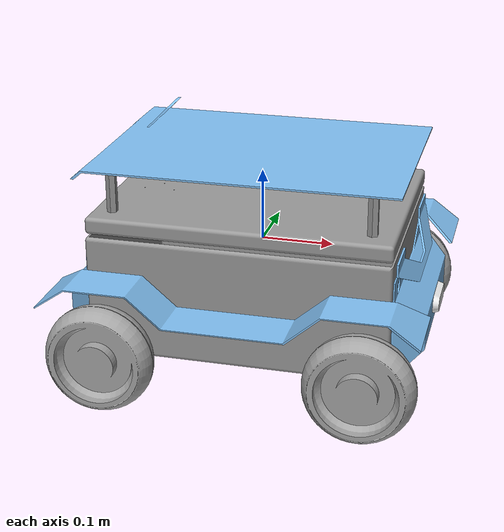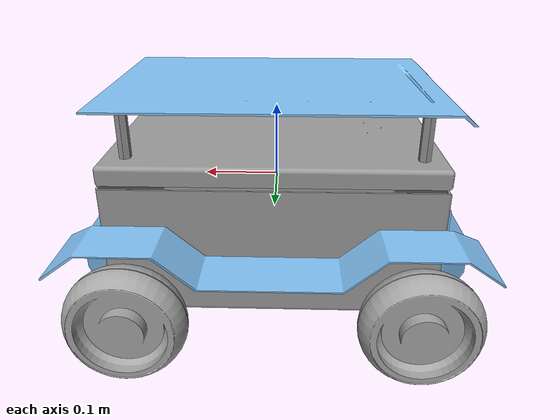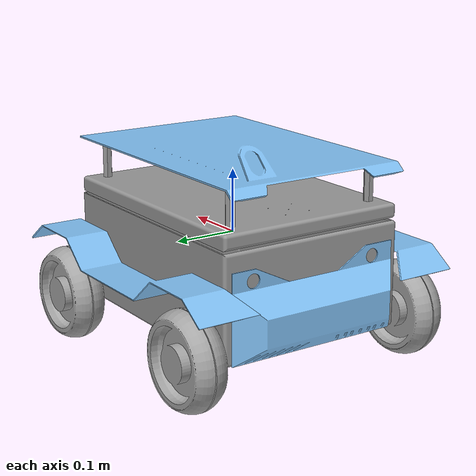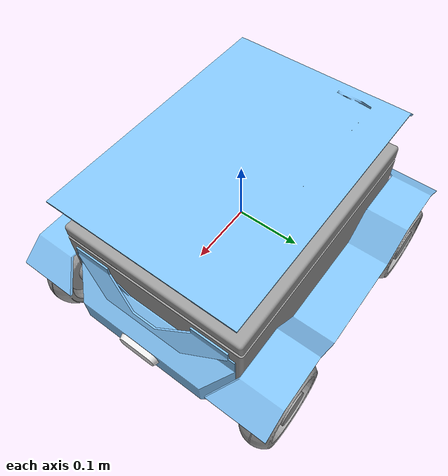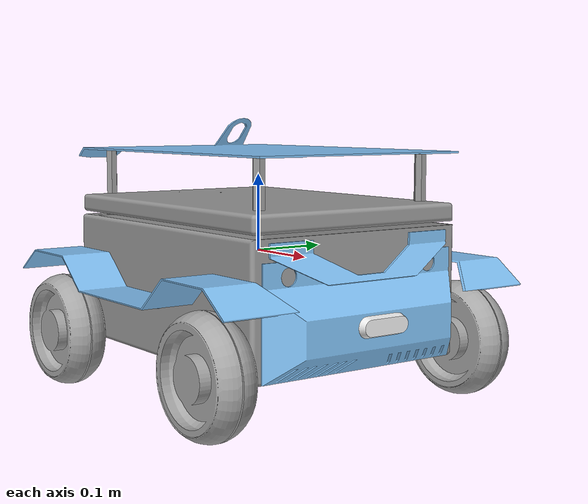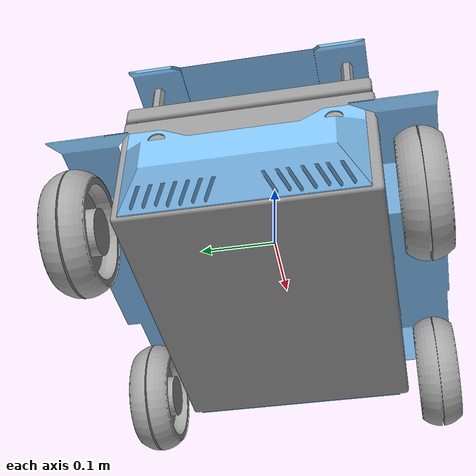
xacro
<robot name="solverBot_body" xmlns:xacro="http://www.ros.org/wiki/xacro">

  <!-- constants mio -->

  <xacro:property name="pi_const" value="3.14159265"/>

  <!-- Body dimensions -->

  <xacro:property name="body_link_x_dim" value="0.429"/>
  <xacro:property name="body_link_y_dim" value="0.335"/>
  <xacro:property name="body_link_z_dim" value="0.346"/>
  <xacro:property name="body_volume" value="${body_link_x_dim * body_link_y_dim * body_link_z_dim}"/>

  <!-- wheel dimensions -->

  <xacro:property name="wheel_link_radius" value="0.0755"/>
  <xacro:property name="wheel_link_length" value="0.055"/>
  <xacro:property name="wheel_link_z_location" value="-0.110"/>
  <xacro:property name="wheel_link_radius_sq" value="${wheel_link_radius * wheel_link_radius}"/>

  <xacro:property name="wheel_volume" value="${pi_const * wheel_link_radius_sq * wheel_link_length }"/>
  <xacro:property name="wheel_mesh" value="package://solver_description/meshes/wheelv3.dae"/>

  <!-- material density -->

  <xacro:property name="body_density" value="131.20"/>
  <xacro:property name="wheel_density" value="837.23"/>

  <!-- robot body and wheel mass -->

  <xacro:property name="body_mass" value="${body_density * body_volume}"/>
  <xacro:property name="wheel_mass" value="${wheel_density * wheel_volume}"/>

  <!-- moments of inertia of the wheel -->

  <xacro:property name="Iz_wheel" value="${0.5 * wheel_mass * wheel_link_radius_sq}"/>
  <xacro:property name="I_wheel" value="-${(1.0/12.0) * wheel_mass * (3.0 * wheel_link_radius_sq + wheel_link_length * wheel_link_length)}"/>

  <!-- This macro defines the complete inertial section of the wheel -->

  <xacro:macro name="inertia_wheel">
      <inertial>
          <origin rpy="0 0 0" xyz="0 0 0"/>
          <mass value="${wheel_mass}"/>
          <inertia ixx="0.0013393845833333333" ixy="0.0" ixz="0.0" iyy="0.0013393845833333333" iyz="0.0" izz="0.0023371024999999995"/>
      </inertial>

  </xacro:macro>

  <!-- over here we include the file that defines extra Gazebo options and motion control driver -->
  <xacro:include filename="robot.gazebo"/>

  <!-- from here link and joints definitions -->

  <!-- define this dummy or Gazebo will complain -->
  <link name="dummy">
  </link>

  <joint name="dummy_joint" type="fixed" >
      <parent link="dummy"/>
      <child  link="body_link" />
  </joint>

  <!-- from here body link and joints definitions -->

  <!-- This is the body of the robot -->
  <link name="body_link">
        <visual>
            <geometry>
                <mesh filename="package://solver_description/meshes/baseCaja.dae" />
            </geometry>
            <origin rpy="0 0 -1.5708" xyz="0 0 0"/>
        </visual>
        <visual>
            <geometry>
                <mesh filename="package://solver_description/meshes/tapacaja.stl" />
            </geometry>
            <origin rpy="0 0 -1.5708" xyz="0 0 0"/>

        </visual>
        <visual>
            <geometry>
                <mesh filename="package://solver_description/meshes/screw_hex.dae" />
            </geometry>
            <origin rpy="0 0 -1.5708" xyz="0 0 0"/>

        </visual>
      <collision>
          <geometry>
              <box size="${body_link_x_dim} ${body_link_y_dim} ${body_link_z_dim}" />
          </geometry>
          <origin rpy="0 0 0" xyz="0 0 0"/>
      </collision>
      <inertial>
          <origin rpy="0 0 0" xyz="0 0 0"/>
          <mass value="${body_mass}"/>
          <inertia
          ixx="${(1/12) * body_mass * (body_link_y_dim * body_link_y_dim + body_link_z_dim*body_link_z_dim)}"
          iyy="${(1/12) * body_mass * (body_link_x_dim * body_link_x_dim + body_link_z_dim*body_link_z_dim)}"
          izz="${(1/12) * body_mass * (body_link_y_dim * body_link_x_dim + body_link_z_dim*body_link_x_dim)}"
          ixy="0" ixz="0" iyz="0" />
      </inertial>
      <!-- close body link -->
  </link>

  <link name="aileron">
    <visual>
        <geometry>
            <mesh filename="package://solver_description/meshes/aleron_frontal.dae" />
        </geometry>
        <origin rpy="0 0 -1.5708" xyz="0 0 0"/>
    </visual>
    <visual>
        <geometry>
            <mesh filename="package://solver_description/meshes/Fender_R.dae" />
        </geometry>
        <origin rpy="0 0 -1.5708" xyz="0 0 0"/>
    </visual>
    <visual>
        <geometry>
            <mesh filename="package://solver_description/meshes/Fender_L.dae" />
        </geometry>
        <origin rpy="0 0 -1.5708" xyz="0 0 0"/>
    </visual>
    <visual>
        <geometry>
            <mesh filename="package://solver_description/meshes/cover.dae" />
        </geometry>
        <origin rpy="0 0 -1.5708" xyz="0 0 0"/>
    </visual>
    <visual>
        <geometry>
            <mesh filename="package://solver_description/meshes/bumpers.dae" />
        </geometry>
        <origin rpy="0 0 1.5708" xyz="0 0 0"/>
    </visual>
  <collision>
      <geometry>
          <box size="${body_link_x_dim} ${body_link_y_dim} ${body_link_z_dim}" />
      </geometry>
      <origin rpy="0 0 0" xyz="0 0 0"/>
  </collision>
  <!-- close body link -->
</link>
<joint name="aileron_joint" type="fixed" >
    <parent link="dummy"/>
    <child  link="aileron" />
</joint>
<link name="light">
    <visual>
        <geometry>
            <mesh filename="package://solver_description/meshes/Front_Light.dae" />
        </geometry>
        <origin rpy="0 0 1.5708" xyz="-0.025 0 0"/>
    </visual>
  <collision>
      <geometry>
          <box size="${body_link_x_dim} ${body_link_y_dim} ${body_link_z_dim}" />
      </geometry>
      <origin rpy="0 0 0" xyz="0 0 0"/>
  </collision>
  <!-- close body link -->
</link>
<joint name="light_joint" type="fixed" >
    <parent link="dummy"/>
    <child  link="light" />
</joint>
  <!-- finish here body link and joints definitions -->

  <!-- start here wheels link and joints definitions -->

  <xacro:include filename="solver_wheel.xacro"/>

  <!-- This is the back right wheel of the robot -->
  <xacro:solver_wheel wheel_prefix="1" />

  <!-- This is the back left wheel of the robot -->
  <xacro:solver_wheel wheel_prefix="2" link_visual_origin_r ="1.570795" joint_origin_x="${body_link_x_dim/2-1.2*wheel_link_radius +0.05}" joint_origin_y="${body_link_y_dim/2 +wheel_link_length/2 }" joint_origin_yaw="${-pi_const/2}" joint_axis="-1"/>

  <!-- This is the front rigth wheel of the robot -->
  <xacro:solver_wheel wheel_prefix="3" link_visual_origin_r ="1.570795" joint_origin_x="${body_link_x_dim/2-1.2*wheel_link_radius +0.05}" />

  <!-- This is the front left wheel of the robot -->
  <xacro:solver_wheel wheel_prefix="4" link_visual_origin_r ="1.570795" joint_origin_y="${body_link_y_dim/2 +wheel_link_length/2}"  joint_origin_yaw="${-pi_const/2}" joint_axis="-1"/>

</robot>

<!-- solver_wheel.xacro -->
<robot xmlns:xacro="http://ros.org/wiki/xacro" name="solver_wheel">

	<xacro:macro name="solver_wheel" params="wheel_prefix link_visual_origin_r:=1.570795
	joint_origin_x:=${-body_link_x_dim/2+1.2*wheel_link_radius -0.05}
	joint_origin_y:=${-body_link_y_dim/2 -wheel_link_length/2 }
	joint_origin_yaw:=${pi_const/2}
	joint_axis:=1">

		<joint name="wheel${wheel_prefix}_joint" type="continuous" >
			<parent link="body_link"/>
			<child  link="wheel${wheel_prefix}_link" />
			<origin xyz="${joint_origin_x} ${joint_origin_y} ${wheel_link_z_location }"
			rpy="0 0 ${joint_origin_yaw}" />
			<axis xyz="${joint_axis} 0 0"/>
			<limit effort="1000" velocity="1000"/>
			<dynamics damping="1.0" friction="1.0"/>
		</joint>
		<link name="wheel${wheel_prefix}_link">
			<visual>
				<origin rpy="${link_visual_origin_r} 0 0" xyz="0 0 0"/>
				<geometry>
					<mesh filename="${wheel_mesh}"/>
				</geometry>
			</visual>
			<collision>
				<origin rpy="1.570795 0 0" xyz="0 0 0"/>
				<geometry>
					<mesh filename="${wheel_mesh}"/>
				</geometry>
			</collision>
			<xacro:inertia_wheel/>
		</link>

	</xacro:macro>
</robot>
